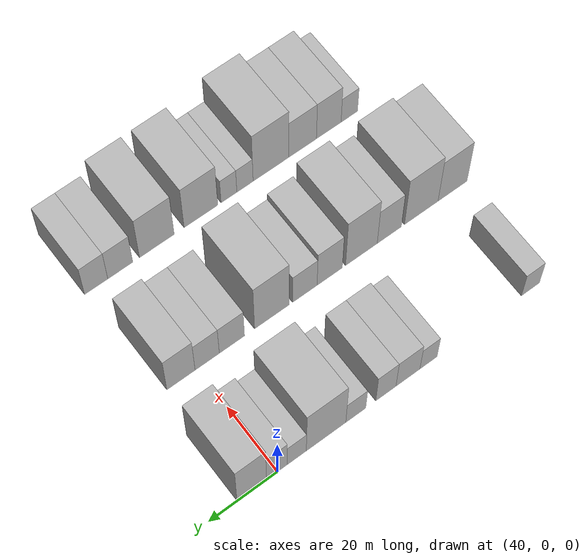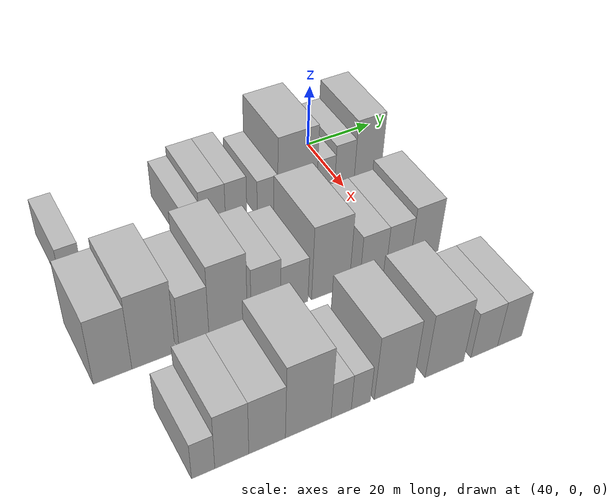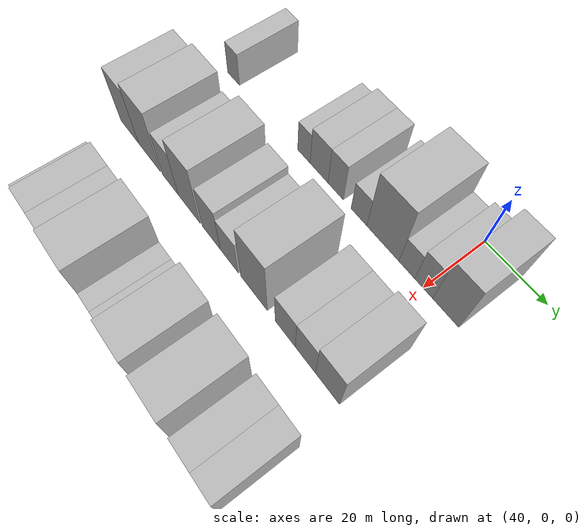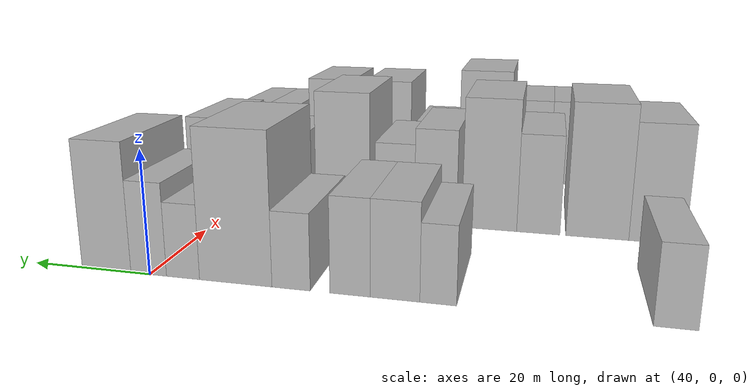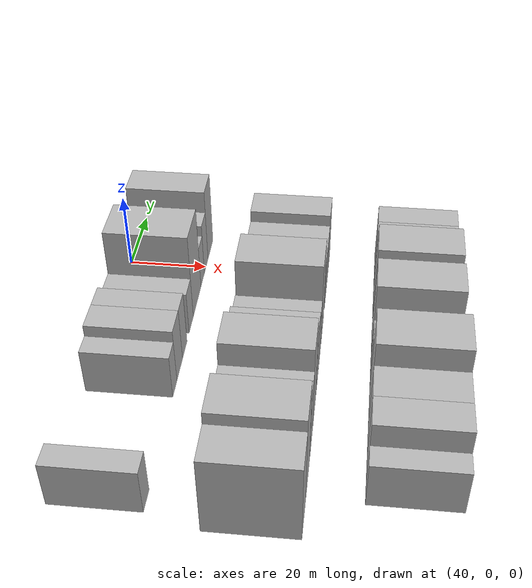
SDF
<sdf version="1.6">
 <world name="default">
  <model name="building_30">
   <static>1</static>
   <pose>50.0000 -76.7317 0 0.000000 0.000000 0.000000</pose>
   <link name="link">
    <pose>0 0 6.00 0 0 0</pose>
    <collision name="collision"><geometry><box><size>20.0000 5.6926 12.0000</size></box></geometry></collision>
    <visual name="visual">
     <cast_shadows>0</cast_shadows>
     <geometry><box><size>20.0000 5.6926 12.0000</size></box></geometry>
     <material>
      <script>
       <uri>model://HANNAS_wall/materials/scripts</uri>
       <uri>model://HANNAS_wall/materials/textures</uri>
       <name>vrc/HANNAS_wall</name>
      </script>
     </material>
    </visual>
   </link>
  </model>
  <model name="building_31">
   <static>1</static>
   <pose>50.0000 -44.9944 0 0.000000 0.000000 0.000000</pose>
   <link name="link">
    <pose>0 0 6.00 0 0 0</pose>
    <collision name="collision"><geometry><box><size>20.0000 5.2606 12.0000</size></box></geometry></collision>
    <visual name="visual">
     <cast_shadows>0</cast_shadows>
     <geometry><box><size>20.0000 5.2606 12.0000</size></box></geometry>
     <material>
      <script>
       <uri>model://HANNAS_wall/materials/scripts</uri>
       <uri>model://HANNAS_wall/materials/textures</uri>
       <name>vrc/HANNAS_wall</name>
      </script>
     </material>
    </visual>
   </link>
  </model>
  <model name="building_32">
   <static>1</static>
   <pose>50.0000 -38.7265 0 0.000000 0.000000 0.000000</pose>
   <link name="link">
    <pose>0 0 7.50 0 0 0</pose>
    <collision name="collision"><geometry><box><size>20.0000 7.2752 15.0000</size></box></geometry></collision>
    <visual name="visual">
     <cast_shadows>0</cast_shadows>
     <geometry><box><size>20.0000 7.2752 15.0000</size></box></geometry>
     <material>
      <script>
       <uri>model://HANNAS_wall/materials/scripts</uri>
       <uri>model://HANNAS_wall/materials/textures</uri>
       <name>vrc/HANNAS_wall</name>
      </script>
     </material>
    </visual>
   </link>
  </model>
  <model name="building_33">
   <static>1</static>
   <pose>50.0000 -32.0536 0 0.000000 0.000000 0.000000</pose>
   <link name="link">
    <pose>0 0 7.50 0 0 0</pose>
    <collision name="collision"><geometry><box><size>20.0000 6.0708 15.0000</size></box></geometry></collision>
    <visual name="visual">
     <cast_shadows>0</cast_shadows>
     <geometry><box><size>20.0000 6.0708 15.0000</size></box></geometry>
     <material>
      <script>
       <uri>model://HANNAS_wall/materials/scripts</uri>
       <uri>model://HANNAS_wall/materials/textures</uri>
       <name>vrc/HANNAS_wall</name>
      </script>
     </material>
    </visual>
   </link>
  </model>
  <model name="building_34">
   <static>1</static>
   <pose>50.0000 -23.0330 0 0.000000 0.000000 0.000000</pose>
   <link name="link">
    <pose>0 0 6.00 0 0 0</pose>
    <collision name="collision"><geometry><box><size>20.0000 5.9702 12.0000</size></box></geometry></collision>
    <visual name="visual">
     <cast_shadows>0</cast_shadows>
     <geometry><box><size>20.0000 5.9702 12.0000</size></box></geometry>
     <material>
      <script>
       <uri>model://HANNAS_wall/materials/scripts</uri>
       <uri>model://HANNAS_wall/materials/textures</uri>
       <name>vrc/HANNAS_wall</name>
      </script>
     </material>
    </visual>
   </link>
  </model>
  <model name="building_35">
   <static>1</static>
   <pose>50.0000 -14.2006 0 0.000000 0.000000 0.000000</pose>
   <link name="link">
    <pose>0 0 12.00 0 0 0</pose>
    <collision name="collision"><geometry><box><size>20.0000 11.6945 24.0000</size></box></geometry></collision>
    <visual name="visual">
     <cast_shadows>0</cast_shadows>
     <geometry><box><size>20.0000 11.6945 24.0000</size></box></geometry>
     <material>
      <script>
       <uri>model://HANNAS_wall/materials/scripts</uri>
       <uri>model://HANNAS_wall/materials/textures</uri>
       <name>vrc/HANNAS_wall</name>
      </script>
     </material>
    </visual>
   </link>
  </model>
  <model name="building_36">
   <static>1</static>
   <pose>50.0000 -5.5982 0 0.000000 0.000000 0.000000</pose>
   <link name="link">
    <pose>0 0 6.00 0 0 0</pose>
    <collision name="collision"><geometry><box><size>20.0000 5.5104 12.0000</size></box></geometry></collision>
    <visual name="visual">
     <cast_shadows>0</cast_shadows>
     <geometry><box><size>20.0000 5.5104 12.0000</size></box></geometry>
     <material>
      <script>
       <uri>model://HANNAS_wall/materials/scripts</uri>
       <uri>model://HANNAS_wall/materials/textures</uri>
       <name>vrc/HANNAS_wall</name>
      </script>
     </material>
    </visual>
   </link>
  </model>
  <model name="building_37">
   <static>1</static>
   <pose>50.0000 0.1944 0 0.000000 0.000000 0.000000</pose>
   <link name="link">
    <pose>0 0 7.50 0 0 0</pose>
    <collision name="collision"><geometry><box><size>20.0000 6.0749 15.0000</size></box></geometry></collision>
    <visual name="visual">
     <cast_shadows>0</cast_shadows>
     <geometry><box><size>20.0000 6.0749 15.0000</size></box></geometry>
     <material>
      <script>
       <uri>model://HANNAS_wall/materials/scripts</uri>
       <uri>model://HANNAS_wall/materials/textures</uri>
       <name>vrc/HANNAS_wall</name>
      </script>
     </material>
    </visual>
   </link>
  </model>
  <model name="building_38">
   <static>1</static>
   <pose>50.0000 7.5005 0 0.000000 0.000000 0.000000</pose>
   <link name="link">
    <pose>0 0 10.50 0 0 0</pose>
    <collision name="collision"><geometry><box><size>20.0000 8.5372 21.0000</size></box></geometry></collision>
    <visual name="visual">
     <cast_shadows>0</cast_shadows>
     <geometry><box><size>20.0000 8.5372 21.0000</size></box></geometry>
     <material>
      <script>
       <uri>model://HANNAS_wall/materials/scripts</uri>
       <uri>model://HANNAS_wall/materials/textures</uri>
       <name>vrc/HANNAS_wall</name>
      </script>
     </material>
    </visual>
   </link>
  </model>
  <model name="building_101">
   <static>1</static>
   <pose>82.0000 -78.2723 0 0.000000 0.000000 0.000000</pose>
   <link name="link">
    <pose>0 0 10.50 0 0 0</pose>
    <collision name="collision"><geometry><box><size>20.0000 9.2538 21.0000</size></box></geometry></collision>
    <visual name="visual">
     <cast_shadows>0</cast_shadows>
     <geometry><box><size>20.0000 9.2538 21.0000</size></box></geometry>
     <material>
      <script>
       <uri>model://HANNAS_wall/materials/scripts</uri>
       <uri>model://HANNAS_wall/materials/textures</uri>
       <name>vrc/HANNAS_wall</name>
      </script>
     </material>
    </visual>
   </link>
  </model>
  <model name="building_102">
   <static>1</static>
   <pose>82.0000 -68.3333 0 0.000000 0.000000 0.000000</pose>
   <link name="link">
    <pose>0 0 12.00 0 0 0</pose>
    <collision name="collision"><geometry><box><size>20.0000 10.6241 24.0000</size></box></geometry></collision>
    <visual name="visual">
     <cast_shadows>0</cast_shadows>
     <geometry><box><size>20.0000 10.6241 24.0000</size></box></geometry>
     <material>
      <script>
       <uri>model://HANNAS_wall/materials/scripts</uri>
       <uri>model://HANNAS_wall/materials/textures</uri>
       <name>vrc/HANNAS_wall</name>
      </script>
     </material>
    </visual>
   </link>
  </model>
  <model name="building_103">
   <static>1</static>
   <pose>82.0000 -58.2504 0 0.000000 0.000000 0.000000</pose>
   <link name="link">
    <pose>0 0 9.00 0 0 0</pose>
    <collision name="collision"><geometry><box><size>20.0000 7.5419 18.0000</size></box></geometry></collision>
    <visual name="visual">
     <cast_shadows>0</cast_shadows>
     <geometry><box><size>20.0000 7.5419 18.0000</size></box></geometry>
     <material>
      <script>
       <uri>model://HANNAS_wall/materials/scripts</uri>
       <uri>model://HANNAS_wall/materials/textures</uri>
       <name>vrc/HANNAS_wall</name>
      </script>
     </material>
    </visual>
   </link>
  </model>
  <model name="building_104">
   <static>1</static>
   <pose>82.0000 -49.5698 0 0.000000 0.000000 0.000000</pose>
   <link name="link">
    <pose>0 0 12.00 0 0 0</pose>
    <collision name="collision"><geometry><box><size>20.0000 9.8192 24.0000</size></box></geometry></collision>
    <visual name="visual">
     <cast_shadows>0</cast_shadows>
     <geometry><box><size>20.0000 9.8192 24.0000</size></box></geometry>
     <material>
      <script>
       <uri>model://HANNAS_wall/materials/scripts</uri>
       <uri>model://HANNAS_wall/materials/textures</uri>
       <name>vrc/HANNAS_wall</name>
      </script>
     </material>
    </visual>
   </link>
  </model>
  <model name="building_105">
   <static>1</static>
   <pose>82.0000 -39.7836 0 0.000000 0.000000 0.000000</pose>
   <link name="link">
    <pose>0 0 9.00 0 0 0</pose>
    <collision name="collision"><geometry><box><size>20.0000 7.7533 18.0000</size></box></geometry></collision>
    <visual name="visual">
     <cast_shadows>0</cast_shadows>
     <geometry><box><size>20.0000 7.7533 18.0000</size></box></geometry>
     <material>
      <script>
       <uri>model://HANNAS_wall/materials/scripts</uri>
       <uri>model://HANNAS_wall/materials/textures</uri>
       <name>vrc/HANNAS_wall</name>
      </script>
     </material>
    </visual>
   </link>
  </model>
  <model name="building_106">
   <static>1</static>
   <pose>82.0000 -32.1772 0 0.000000 0.000000 0.000000</pose>
   <link name="link">
    <pose>0 0 7.50 0 0 0</pose>
    <collision name="collision"><geometry><box><size>20.0000 7.4594 15.0000</size></box></geometry></collision>
    <visual name="visual">
     <cast_shadows>0</cast_shadows>
     <geometry><box><size>20.0000 7.4594 15.0000</size></box></geometry>
     <material>
      <script>
       <uri>model://HANNAS_wall/materials/scripts</uri>
       <uri>model://HANNAS_wall/materials/textures</uri>
       <name>vrc/HANNAS_wall</name>
      </script>
     </material>
    </visual>
   </link>
  </model>
  <model name="building_107">
   <static>1</static>
   <pose>82.0000 -22.2147 0 0.000000 0.000000 0.000000</pose>
   <link name="link">
    <pose>0 0 12.00 0 0 0</pose>
    <collision name="collision"><geometry><box><size>20.0000 10.4657 24.0000</size></box></geometry></collision>
    <visual name="visual">
     <cast_shadows>0</cast_shadows>
     <geometry><box><size>20.0000 10.4657 24.0000</size></box></geometry>
     <material>
      <script>
       <uri>model://HANNAS_wall/materials/scripts</uri>
       <uri>model://HANNAS_wall/materials/textures</uri>
       <name>vrc/HANNAS_wall</name>
      </script>
     </material>
    </visual>
   </link>
  </model>
  <model name="building_108">
   <static>1</static>
   <pose>82.0000 -10.2389 0 0.000000 0.000000 0.000000</pose>
   <link name="link">
    <pose>0 0 7.50 0 0 0</pose>
    <collision name="collision"><geometry><box><size>20.0000 7.4857 15.0000</size></box></geometry></collision>
    <visual name="visual">
     <cast_shadows>0</cast_shadows>
     <geometry><box><size>20.0000 7.4857 15.0000</size></box></geometry>
     <material>
      <script>
       <uri>model://HANNAS_wall/materials/scripts</uri>
       <uri>model://HANNAS_wall/materials/textures</uri>
       <name>vrc/HANNAS_wall</name>
      </script>
     </material>
    </visual>
   </link>
  </model>
  <model name="building_109">
   <static>1</static>
   <pose>82.0000 -2.9198 0 0.000000 0.000000 0.000000</pose>
   <link name="link">
    <pose>0 0 7.50 0 0 0</pose>
    <collision name="collision"><geometry><box><size>20.0000 7.1526 15.0000</size></box></geometry></collision>
    <visual name="visual">
     <cast_shadows>0</cast_shadows>
     <geometry><box><size>20.0000 7.1526 15.0000</size></box></geometry>
     <material>
      <script>
       <uri>model://HANNAS_wall/materials/scripts</uri>
       <uri>model://HANNAS_wall/materials/textures</uri>
       <name>vrc/HANNAS_wall</name>
      </script>
     </material>
    </visual>
   </link>
  </model>
  <model name="building_110">
   <static>1</static>
   <pose>82.0000 4.7956 0 0.000000 0.000000 0.000000</pose>
   <link name="link">
    <pose>0 0 9.00 0 0 0</pose>
    <collision name="collision"><geometry><box><size>20.0000 8.2781 18.0000</size></box></geometry></collision>
    <visual name="visual">
     <cast_shadows>0</cast_shadows>
     <geometry><box><size>20.0000 8.2781 18.0000</size></box></geometry>
     <material>
      <script>
       <uri>model://HANNAS_wall/materials/scripts</uri>
       <uri>model://HANNAS_wall/materials/textures</uri>
       <name>vrc/HANNAS_wall</name>
      </script>
     </material>
    </visual>
   </link>
  </model>
  <model name="building_181">
   <static>1</static>
   <pose>114.0000 -70.5569 0 0.000000 0.000000 0.000000</pose>
   <link name="link">
    <pose>0 0 6.00 0 0 0</pose>
    <collision name="collision"><geometry><box><size>20.0000 5.2757 12.0000</size></box></geometry></collision>
    <visual name="visual">
     <cast_shadows>0</cast_shadows>
     <geometry><box><size>20.0000 5.2757 12.0000</size></box></geometry>
     <material>
      <script>
       <uri>model://HANNAS_wall/materials/scripts</uri>
       <uri>model://HANNAS_wall/materials/textures</uri>
       <name>vrc/HANNAS_wall</name>
      </script>
     </material>
    </visual>
   </link>
  </model>
  <model name="building_182">
   <static>1</static>
   <pose>114.0000 -63.9984 0 0.000000 0.000000 0.000000</pose>
   <link name="link">
    <pose>0 0 9.00 0 0 0</pose>
    <collision name="collision"><geometry><box><size>20.0000 7.8411 18.0000</size></box></geometry></collision>
    <visual name="visual">
     <cast_shadows>0</cast_shadows>
     <geometry><box><size>20.0000 7.8411 18.0000</size></box></geometry>
     <material>
      <script>
       <uri>model://HANNAS_wall/materials/scripts</uri>
       <uri>model://HANNAS_wall/materials/textures</uri>
       <name>vrc/HANNAS_wall</name>
      </script>
     </material>
    </visual>
   </link>
  </model>
  <model name="building_183">
   <static>1</static>
   <pose>114.0000 -55.7418 0 0.000000 0.000000 0.000000</pose>
   <link name="link">
    <pose>0 0 9.00 0 0 0</pose>
    <collision name="collision"><geometry><box><size>20.0000 8.6722 18.0000</size></box></geometry></collision>
    <visual name="visual">
     <cast_shadows>0</cast_shadows>
     <geometry><box><size>20.0000 8.6722 18.0000</size></box></geometry>
     <material>
      <script>
       <uri>model://HANNAS_wall/materials/scripts</uri>
       <uri>model://HANNAS_wall/materials/textures</uri>
       <name>vrc/HANNAS_wall</name>
      </script>
     </material>
    </visual>
   </link>
  </model>
  <model name="building_184">
   <static>1</static>
   <pose>114.0000 -45.8225 0 0.000000 0.000000 0.000000</pose>
   <link name="link">
    <pose>0 0 12.00 0 0 0</pose>
    <collision name="collision"><geometry><box><size>20.0000 11.1664 24.0000</size></box></geometry></collision>
    <visual name="visual">
     <cast_shadows>0</cast_shadows>
     <geometry><box><size>20.0000 11.1664 24.0000</size></box></geometry>
     <material>
      <script>
       <uri>model://HANNAS_wall/materials/scripts</uri>
       <uri>model://HANNAS_wall/materials/textures</uri>
       <name>vrc/HANNAS_wall</name>
      </script>
     </material>
    </visual>
   </link>
  </model>
  <model name="building_185">
   <static>1</static>
   <pose>114.0000 -37.7198 0 0.000000 0.000000 0.000000</pose>
   <link name="link">
    <pose>0 0 6.00 0 0 0</pose>
    <collision name="collision"><geometry><box><size>20.0000 5.0389 12.0000</size></box></geometry></collision>
    <visual name="visual">
     <cast_shadows>0</cast_shadows>
     <geometry><box><size>20.0000 5.0389 12.0000</size></box></geometry>
     <material>
      <script>
       <uri>model://HANNAS_wall/materials/scripts</uri>
       <uri>model://HANNAS_wall/materials/textures</uri>
       <name>vrc/HANNAS_wall</name>
      </script>
     </material>
    </visual>
   </link>
  </model>
  <model name="building_186">
   <static>1</static>
   <pose>114.0000 -32.7788 0 0.000000 0.000000 0.000000</pose>
   <link name="link">
    <pose>0 0 6.00 0 0 0</pose>
    <collision name="collision"><geometry><box><size>20.0000 4.8432 12.0000</size></box></geometry></collision>
    <visual name="visual">
     <cast_shadows>0</cast_shadows>
     <geometry><box><size>20.0000 4.8432 12.0000</size></box></geometry>
     <material>
      <script>
       <uri>model://HANNAS_wall/materials/scripts</uri>
       <uri>model://HANNAS_wall/materials/textures</uri>
       <name>vrc/HANNAS_wall</name>
      </script>
     </material>
    </visual>
   </link>
  </model>
  <model name="building_187">
   <static>1</static>
   <pose>114.0000 -24.2140 0 0.000000 0.000000 0.000000</pose>
   <link name="link">
    <pose>0 0 10.50 0 0 0</pose>
    <collision name="collision"><geometry><box><size>20.0000 10.2865 21.0000</size></box></geometry></collision>
    <visual name="visual">
     <cast_shadows>0</cast_shadows>
     <geometry><box><size>20.0000 10.2865 21.0000</size></box></geometry>
     <material>
      <script>
       <uri>model://HANNAS_wall/materials/scripts</uri>
       <uri>model://HANNAS_wall/materials/textures</uri>
       <name>vrc/HANNAS_wall</name>
      </script>
     </material>
    </visual>
   </link>
  </model>
  <model name="building_188">
   <static>1</static>
   <pose>114.0000 -10.8435 0 0.000000 0.000000 0.000000</pose>
   <link name="link">
    <pose>0 0 10.50 0 0 0</pose>
    <collision name="collision"><geometry><box><size>20.0000 10.4544 21.0000</size></box></geometry></collision>
    <visual name="visual">
     <cast_shadows>0</cast_shadows>
     <geometry><box><size>20.0000 10.4544 21.0000</size></box></geometry>
     <material>
      <script>
       <uri>model://HANNAS_wall/materials/scripts</uri>
       <uri>model://HANNAS_wall/materials/textures</uri>
       <name>vrc/HANNAS_wall</name>
      </script>
     </material>
    </visual>
   </link>
  </model>
  <model name="building_189">
   <static>1</static>
   <pose>114.0000 0.0944 0 0.000000 0.000000 0.000000</pose>
   <link name="link">
    <pose>0 0 7.50 0 0 0</pose>
    <collision name="collision"><geometry><box><size>20.0000 7.4214 15.0000</size></box></geometry></collision>
    <visual name="visual">
     <cast_shadows>0</cast_shadows>
     <geometry><box><size>20.0000 7.4214 15.0000</size></box></geometry>
     <material>
      <script>
       <uri>model://HANNAS_wall/materials/scripts</uri>
       <uri>model://HANNAS_wall/materials/textures</uri>
       <name>vrc/HANNAS_wall</name>
      </script>
     </material>
    </visual>
   </link>
  </model>
  <model name="building_190">
   <static>1</static>
   <pose>114.0000 7.2378 0 0.000000 0.000000 0.000000</pose>
   <link name="link">
    <pose>0 0 7.50 0 0 0</pose>
    <collision name="collision"><geometry><box><size>20.0000 6.8655 15.0000</size></box></geometry></collision>
    <visual name="visual">
     <cast_shadows>0</cast_shadows>
     <geometry><box><size>20.0000 6.8655 15.0000</size></box></geometry>
     <material>
      <script>
       <uri>model://HANNAS_wall/materials/scripts</uri>
       <uri>model://HANNAS_wall/materials/textures</uri>
       <name>vrc/HANNAS_wall</name>
      </script>
     </material>
    </visual>
   </link>
  </model>
 </world>
</sdf>
